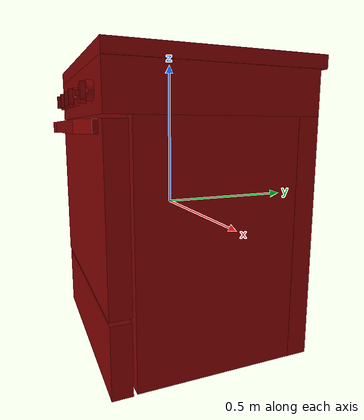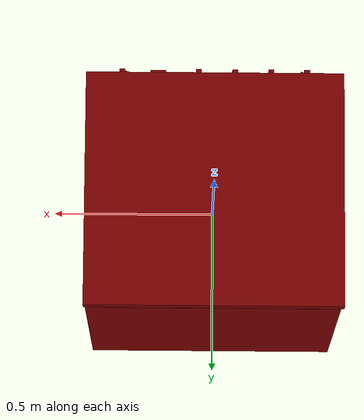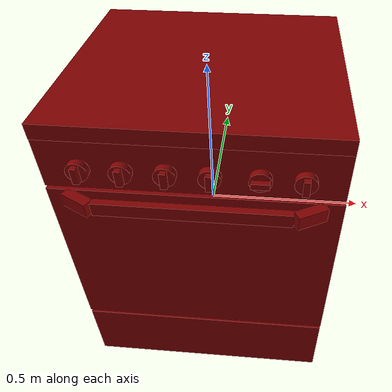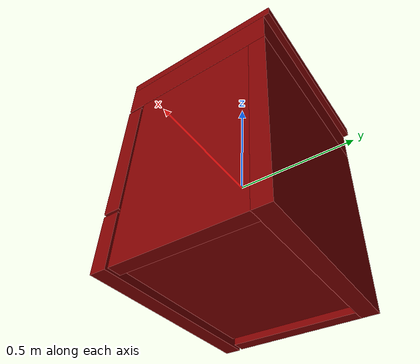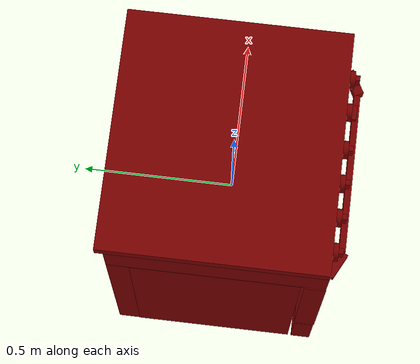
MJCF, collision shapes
<?xml version='1.0' encoding='UTF-8'?>
<mujoco model="model">
  <compiler angle="radian"/>
  <asset>
    <mesh file="visuals/knob_front_left.obj" name="knob_front_left_vis"/>
    <mesh file="visuals/knob_front_right.obj" name="knob_front_right_vis"/>
    <mesh file="visuals/knob_rear_left.obj" name="knob_rear_left_vis"/>
    <mesh file="visuals/knob_rear_right.obj" name="knob_rear_right_vis"/>
    <mesh file="visuals/Body001.obj" name="Body001_vis"/>
    <mesh file="visuals/Door001.obj" name="Door001_vis"/>
    <mesh file="visuals/Door001_Clear.obj" name="Door001_Clear_vis"/>
    <mesh file="visuals/Knob001.obj" name="Knob001_vis"/>
    <mesh file="visuals/Knob002.obj" name="Knob002_vis"/>
    <mesh file="visuals/Shelf001.obj" name="Shelf001_vis"/>
    <texture file="visuals/T_BC001.png" name="Body001_material" type="2d"/>
    <material name="Body001_material" rgba="1 1 1 1.0" texture="Body001_material" shininess="0.44721364974975586" specular="0.7"/>
    <texture file="visuals/T_BC001.png" name="knob_front_left_material" type="2d"/>
    <material name="knob_front_left_material" rgba="1 1 1 1.0" texture="knob_front_left_material" shininess="0.44721364974975586" specular="0.3103448502657381"/>
    <texture file="visuals/T_BC001.png" name="knob_front_right_material" type="2d"/>
    <material name="knob_front_right_material" rgba="1 1 1 1.0" texture="knob_front_right_material" shininess="0.44721364974975586" specular="0.3103448502657381"/>
    <texture file="visuals/T_BC001.png" name="knob_rear_left_material" type="2d"/>
    <material name="knob_rear_left_material" rgba="1 1 1 1.0" texture="knob_rear_left_material" shininess="0.44721364974975586" specular="0.3103448502657381"/>
    <texture file="visuals/T_BC001.png" name="knob_rear_right_material" type="2d"/>
    <material name="knob_rear_right_material" rgba="1 1 1 1.0" texture="knob_rear_right_material" shininess="0.44721364974975586" specular="0.3103448502657381"/>
    <texture file="visuals/T_BC001.png" name="Door001_material" type="2d"/>
    <material name="Door001_material" rgba="1 1 1 1.0" texture="Door001_material" shininess="0.44721364974975586" specular="0.3103448502657381"/>
    <material name="Door001_Clear_material" rgba="0.06827369332313538 0.06827369332313538 0.06827369332313538 0.699999988079071" shininess="0.44721364974975586" specular="0.3103448502657381"/>
    <texture file="visuals/T_BC001.png" name="Knob001_material" type="2d"/>
    <material name="Knob001_material" rgba="1 1 1 1.0" texture="Knob001_material" shininess="0.44721364974975586" specular="0.3103448502657381"/>
    <texture file="visuals/T_BC001.png" name="Knob002_material" type="2d"/>
    <material name="Knob002_material" rgba="1 1 1 1.0" texture="Knob002_material" shininess="0.44721364974975586" specular="0.3103448502657381"/>
    <texture file="visuals/T_BC001.png" name="Shelf001_material" type="2d"/>
    <material name="Shelf001_material" rgba="1 1 1 1.0" texture="Shelf001_material" shininess="0.44721364974975586" specular="0.3103448502657381"/>
  </asset>
  <default>
    <default class="visual">
      <geom conaffinity="0" contype="0" group="1" type="mesh"/>
    </default>
    <default class="collision">
      <geom group="0" rgba="0.5 0 0 0.5"/>
    </default>
    <default class="spawn">
      <geom group="0" rgba="1 1 1 0.5" contype="0" conaffinity="0"/>
      <site group="0" rgba="1 1 1 0.5"/>
    </default>
    <default class="region">
      <geom group="1" conaffinity="0" contype="0" rgba="0 1 0 0"/>
    </default>
  </default>
  <worldbody>
    <body>
      <body name="object">
        <site type="cylinder" rgba="0.5 0 0 0.5" size="0.11301018297672272 0.0001" pos="-0.163959 0.158725 0.500847" name="burner_on_rear_left"/>
        <site type="cylinder" rgba="0.5 0 0 0.5" size="0.11806419491767883 0.0001" pos="0.166136 -0.101286 0.498320" name="burner_on_front_right"/>
        <site type="cylinder" rgba="0.5 0 0 0.5" size="0.08921706676483154 0.0001" pos="0.179507 0.173874 0.499532" name="burner_on_rear_right"/>
        <site type="cylinder" rgba="0.5 0 0 0.5" size="0.08654578775167465 0.0001" pos="-0.178005 -0.102378 0.499407" name="burner_on_front_left"/>
        <geom mesh="Body001_vis" type="mesh" solimp="0.998 0.998 0.001" solref="0.001 1" density="100" friction="0.95 0.3 0.1" class="visual" material="Body001_material"/>
        <geom class="collision" type="box" pos="0.000212 0.011594 0.384819" size="0.3899860382080078 0.3450489640235901 0.0726412832736969" quat="1.0 0.0 0.0 0.0"/>
        <geom class="collision" type="box" pos="-0.000304 0.024289 0.480035" size="0.39050203561782837 0.35778361558914185 0.021875659003853798" quat="1.0 0.0 0.0 0.0"/>
        <geom class="collision" type="box" pos="0.000148 0.319748 -0.094428" size="0.39005038142204285 0.03689435496926308 0.4065956175327301" quat="1.0 0.0 0.0 0.0"/>
        <geom class="collision" type="box" pos="-0.363437 0.014530 -0.094428" size="0.02749677188694477 0.26943087577819824 0.4065956175327301" quat="1.0 0.0 0.0 0.0"/>
        <geom class="collision" type="box" pos="0.361682 0.014530 -0.094428" size="0.027995208278298378 0.26943087577819824 0.4065956175327301" quat="1.0 0.0 0.0 0.0"/>
        <geom class="collision" type="box" pos="-0.002094 0.010582 -0.361508" size="0.3304120600223541 0.2728126645088196 0.1128060519695282" quat="1.0 0.0 0.0 0.0"/>
        <geom class="collision" type="box" pos="-0.000039 -0.299405 -0.386560" size="0.3912808299064636 0.03293570131063461 0.11657709628343582" quat="1.0 0.0 0.0 0.0"/>
        <geom class="collision" type="box" pos="0.321052 0.015630 -0.009627" size="0.013427120633423328 0.2681756615638733 0.004859191831201315" quat="1.0 0.0 0.0 0.0"/>
        <geom class="collision" type="box" pos="-0.326650 0.015630 -0.009627" size="0.01115818228572607 0.2681756615638733 0.004859191831201315" quat="1.0 0.0 0.0 0.0"/>
        <body name="knob_front_left">
          <joint axis="0.0 -1.0 0.0" pos="-0.283540 -0.352213 0.377974" limited="true" name="knob_front_left_joint" range="0.0 3.141592653589793" type="hinge" damping="0.05" armature="0.001"/>
          <geom mesh="knob_front_left_vis" type="mesh" solimp="0.998 0.998 0.001" solref="0.001 1" density="100" friction="0.95 0.3 0.1" class="visual" material="knob_front_left_material"/>
          <geom class="collision" type="cylinder" pos="-0.283085 -0.345812 0.377885" size="0.028806501999497414 0.00980240385979414" quat="0.7071067094802856 0.7071068286895752 0.0 0.0"/>
          <geom class="collision" type="box" pos="-0.283133 -0.363041 0.377709" size="0.008616055361926556 0.007660010829567909 0.023619145154953003" quat="1.0 0.0 0.0 0.0" name="knob_front_left_main"/>
        </body>
        <body name="knob_front_right">
          <joint axis="0.0 -1.0 0.0" pos="0.048532 -0.352213 0.377975" limited="true" name="knob_front_right_joint" range="0.0 3.141592653589793" type="hinge" damping="0.05" armature="0.001"/>
          <geom mesh="knob_front_right_vis" type="mesh" solimp="0.998 0.998 0.001" solref="0.001 1" density="100" friction="0.95 0.3 0.1" class="visual" material="knob_front_right_material"/>
          <geom class="collision" type="box" pos="0.048464 -0.363041 0.377709" size="0.00861604418605566 0.007660005707293749 0.023619122803211212" quat="1.0 0.0 0.0 0.0" name="knob_front_right_main"/>
          <geom class="collision" type="cylinder" pos="0.048511 -0.345812 0.377885" size="0.028806501999497414 0.00980240385979414" quat="0.7071067094802856 0.7071068286895752 0.0 0.0"/>
        </body>
        <body name="knob_rear_left">
          <joint axis="0.0 -1.0 0.0" pos="-0.173767 -0.352213 0.377974" limited="true" name="knob_rear_left_joint" range="0.0 3.141592653589793" type="hinge" damping="0.05" armature="0.001"/>
          <geom mesh="knob_rear_left_vis" type="mesh" solimp="0.998 0.998 0.001" solref="0.001 1" density="100" friction="0.95 0.3 0.1" class="visual" material="knob_rear_left_material"/>
          <geom class="collision" type="box" pos="-0.173871 -0.363041 0.377709" size="0.008616049773991108 0.007660008501261473 0.023619133979082108" quat="1.0 0.0 0.0 0.0" name="knob_rear_left_main"/>
          <geom class="collision" type="cylinder" pos="-0.173823 -0.345812 0.377885" size="0.028806501999497414 0.00980240385979414" quat="0.7071067094802856 0.7071068286895752 0.0 0.0"/>
        </body>
        <body name="knob_rear_right">
          <joint axis="0.0 -1.0 0.0" pos="-0.062610 -0.352213 0.377975" limited="true" name="knob_rear_right_joint" range="0.0 3.141592653589793" type="hinge" damping="0.05" armature="0.001"/>
          <geom mesh="knob_rear_right_vis" type="mesh" solimp="0.998 0.998 0.001" solref="0.001 1" density="100" friction="0.95 0.3 0.1" class="visual" material="knob_rear_right_material"/>
          <geom class="collision" type="box" pos="-0.062893 -0.363041 0.377709" size="0.008616039529442787 0.007660002913326025 0.023619113489985466" quat="1.0 0.0 0.0 0.0" name="knob_rear_right_main"/>
          <geom class="collision" type="cylinder" pos="-0.062845 -0.345812 0.377885" size="0.028806501999497414 0.00980240385979414" quat="0.7071067094802856 0.7071068286895752 0.0 0.0"/>
        </body>
        <body name="Door001">
          <joint axis="1.0 0.0 0.0" pos="-0.000007 -0.332501 -0.256010" limited="true" name="Door001_joint" range="0.0 1.5707963267948966" type="hinge" damping="1" frictionloss="1" armature=".01" stiffness="0.05"/>
          <geom mesh="Door001_vis" type="mesh" solimp="0.998 0.998 0.001" solref="0.001 1" density="100" friction="0.95 0.3 0.1" class="visual" material="Door001_material"/>
          <geom class="collision" type="box" pos="0.000231 -0.299651 0.022286" size="0.39120522141456604 0.034707047045230865 0.279128760099411" quat="1.0 0.0 0.0 0.0"/>
          <geom class="collision" type="box" pos="0.000618 -0.372540 0.280519" size="0.2601470649242401 0.010277687571942806 0.0203574039041996" quat="1.0 0.0 0.0 0.0"/>
          <geom class="collision" type="box" pos="-0.300473 -0.359329 0.280519" size="0.042267441749572754 0.014645480550825596 0.020357487723231316" quat="0.9714630246162415 0.0 -0.0 -0.23719099164009094"/>
          <geom class="collision" type="box" pos="0.303663 -0.359329 0.280519" size="0.042267441749572754 0.014645480550825596 0.020357487723231316" quat="0.9714630246162415 0.0 0.0 0.23719105124473572"/>
          <body name="Door001_Clear">
            <geom mesh="Door001_Clear_vis" type="mesh" solimp="0.998 0.998 0.001" solref="0.001 1" density="100" friction="0.95 0.3 0.1" class="visual" material="Door001_Clear_material"/>
            <geom class="collision" type="box" pos="-0.000138 -0.304011 0.054946" size="0.25481799244880676 0.004614125471562147 0.1529656946659088" quat="1.0 0.0 0.0 0.0"/>
          </body>
        </body>
        <body name="Knob001">
          <joint axis="0.0 0.9999999403953552 0.0" pos="0.173007 -0.352213 0.377737" limited="true" name="Knob001_joint" range="0.0 5.288347633542818" type="hinge" damping="0.05" armature="0.001"/>
          <geom mesh="Knob001_vis" type="mesh" solimp="0.998 0.998 0.001" solref="0.001 1" density="100" friction="0.95 0.3 0.1" class="visual" material="Knob001_material"/>
          <geom class="collision" type="box" pos="0.172739 -0.363041 0.378235" size="0.02361910231411457 0.0076600005850195885 0.008616035804152489" quat="1.0 0.0 0.0 0.0"/>
          <geom class="collision" type="cylinder" pos="0.172915 -0.345812 0.378187" size="0.028806501999497414 0.00980240385979414" quat="0.5 0.5 0.4999999701976776 -0.5"/>
        </body>
        <body name="Knob002">
          <joint axis="0.0 1.0 0.0" pos="0.283604 -0.352213 0.377973" limited="true" name="Knob002_joint" range="0.0 5.602506898901798" type="hinge" damping="0.05" armature="0.001"/>
          <geom mesh="Knob002_vis" type="mesh" solimp="0.998 0.998 0.001" solref="0.001 1" density="100" friction="0.95 0.3 0.1" class="visual" material="Knob002_material"/>
          <geom class="collision" type="box" pos="0.283398 -0.363041 0.377709" size="0.008616028353571892 0.007659997791051865 0.023619091138243675" quat="1.0 0.0 0.0 0.0"/>
          <geom class="collision" type="cylinder" pos="0.283446 -0.345812 0.377885" size="0.028806501999497414 0.00980240385979414" quat="0.7071067094802856 0.7071068286895752 0.0 0.0"/>
        </body>
        <body name="Shelf001">
          <joint axis="0.0 -1.0 0.0" pos="-0.003067 0.027412 0.001080" limited="true" name="Shelf001_joint" range="0.0 0.5" type="slide" damping="1" frictionloss="1" armature=".01" stiffness="0.05"/>
          <geom mesh="Shelf001_vis" type="mesh" solimp="0.998 0.998 0.001" solref="0.001 1" density="100" friction="0.95 0.3 0.1" class="visual" material="Shelf001_material"/>
          <geom class="collision" type="box" pos="-0.002433 0.027924 0.001763" size="0.3329881727695465 0.22152017056941986 0.004735182039439678" quat="1.0 0.0 0.0 0.0"/>
        </body>
        <site name="burner_rear_left_place_site" type="cylinder" rgba="0.5 0 0 0" size="0.11301018297672272 4.999999509891495e-05" pos="-0.163959 0.158725 0.500847"/>
        <site name="burner_front_right_place_site" type="cylinder" rgba="0.5 0 0 0" size="0.11806419491767883 4.999999873689376e-05" pos="0.166136 -0.101286 0.498320"/>
        <site name="burner_rear_right_place_site" type="cylinder" rgba="0.5 0 0 0" size="0.08921706676483154 4.999999873689376e-05" pos="0.179507 0.173874 0.499532"/>
        <site name="burner_front_left_place_site" type="cylinder" rgba="0.5 0 0 0" size="0.08654578775167465 4.999999509891495e-05" pos="-0.178005 -0.102378 0.499407"/>
        <geom class="region" name="reg_main" type="box" pos="0.0 0.0240485 0.0009359999999999924" size="0.391619 0.35876850000000005 0.5022009999999999"/>
        <geom class="region" name="reg_int" type="box" pos="-0.0007909999999999862 0.01757900000000001 0.050092" size="0.335909 0.273003 0.302802"/>
      </body>
    </body>
  </worldbody>
  <actuator>
    <motor name="knob_front_left_joint_actuator" joint="knob_front_left_joint" gear="10"/>
    <motor name="knob_front_right_joint_actuator" joint="knob_front_right_joint" gear="10"/>
    <motor name="knob_rear_left_joint_actuator" joint="knob_rear_left_joint" gear="10"/>
    <motor name="knob_rear_right_joint_actuator" joint="knob_rear_right_joint" gear="10"/>
    <motor name="Door001_joint_actuator" joint="Door001_joint" gear="50"/>
    <motor name="Knob001_joint_actuator" joint="Knob001_joint" gear="50"/>
    <motor name="Knob002_joint_actuator" joint="Knob002_joint" gear="50"/>
    <motor name="Shelf001_joint_actuator" joint="Shelf001_joint" gear="50"/>
  </actuator>
</mujoco>
